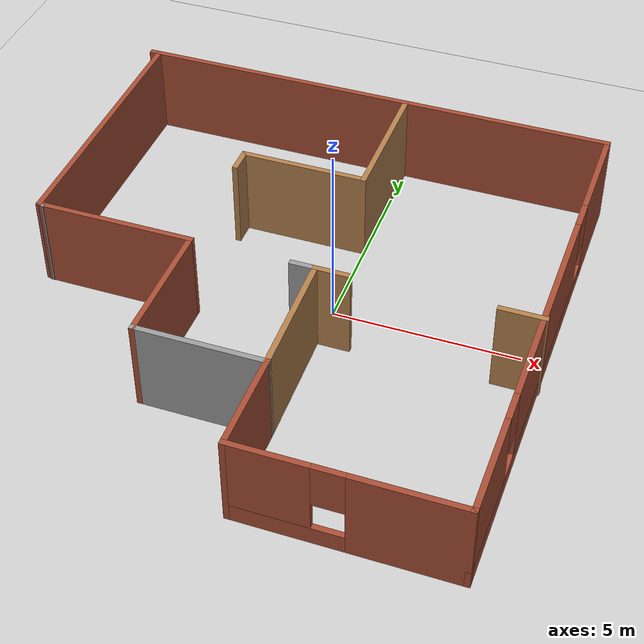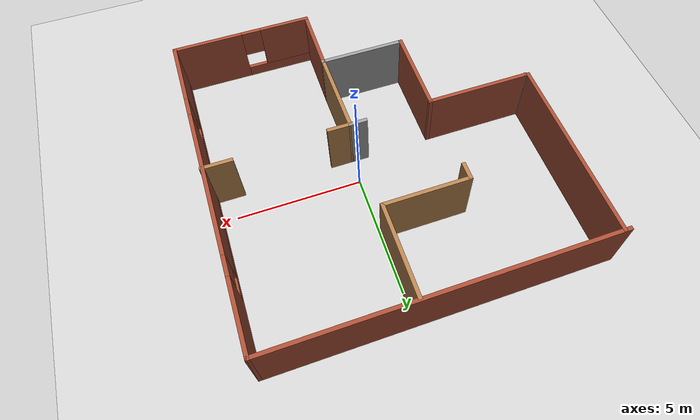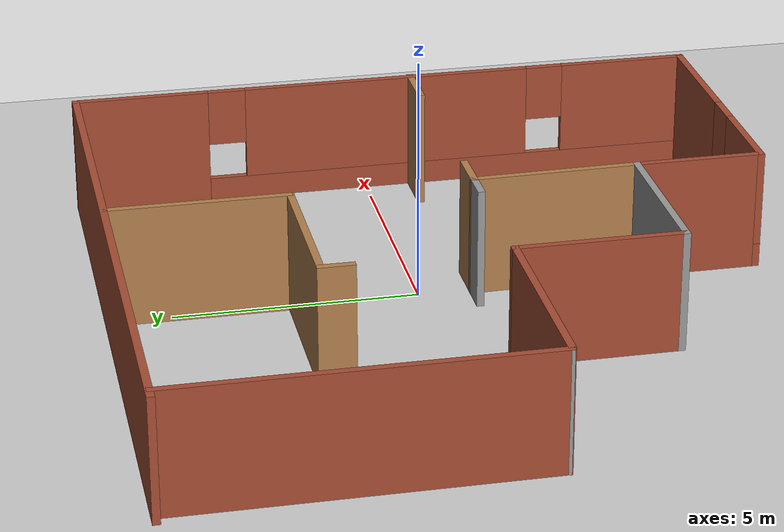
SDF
<sdf version="1.6">
 <world name="default">
  <model name="ground_plane">
   <static>1</static>
   <link name="link">
    <collision name="collision">
     <geometry><plane><normal>0 0 1</normal><size>100 100</size></plane></geometry>
     <surface>
      <contact><collide_bitmask>65535</collide_bitmask></contact>
      <friction><ode><mu>100</mu><mu2>50</mu2></ode></friction>
     </surface>
    </collision>
    <visual name="visual">
     <cast_shadows>0</cast_shadows>
     <geometry><plane><normal>0 0 1</normal><size>100 100</size></plane></geometry>
     <material>
      <script><uri>file://media/materials/scripts/gazebo.material</uri><name>Gazebo/Grey</name></script>
     </material>
    </visual>
   </link>
  </model>
  <model name="building_0">
   <pose>-1.0593 -0.419655 0 0 -0 0</pose>
   <link name="Wall_0">
    <collision name="Wall_0_Collision">
     <geometry><box><size>13.5 0.15 2.5</size></box></geometry>
     <pose>0 0 1.25 0 -0 0</pose>
    </collision>
    <visual name="Wall_0_Visual">
     <pose>0 0 1.25 0 -0 0</pose>
     <geometry><box><size>13.5 0.15 2.5</size></box></geometry>
     <material>
      <script><uri>file://media/materials/scripts/gazebo.material</uri><name>Gazebo/Bricks</name></script>
      <ambient>1 1 1 1</ambient>
     </material>
     <meta><layer>0</layer></meta>
    </visual>
    <pose>-0.019646 6.675 0 0 -0 0</pose>
   </link>
   <link name="Wall_1">
    <pose>6.65535 0 0 0 -0 -1.5708</pose>
    <visual name="Wall_1_Visual_0">
     <pose>-5.30319 0 1.25 0 -0 0</pose>
     <geometry><box><size>2.89362 0.15 2.5</size></box></geometry>
     <material>
      <script><uri>file://media/materials/scripts/gazebo.material</uri><name>Gazebo/Bricks</name></script>
      <ambient>1 1 1 1</ambient>
     </material>
     <meta><layer>0</layer></meta>
    </visual>
    <collision name="Wall_1_Collision_0">
     <geometry><box><size>2.89362 0.15 2.5</size></box></geometry>
     <pose>-5.30319 0 1.25 0 -0 0</pose>
    </collision>
    <visual name="Wall_1_Visual_1">
     <pose>1.44681 0 0.25 0 -0 0</pose>
     <geometry><box><size>10.6064 0.15 0.5</size></box></geometry>
     <material>
      <script><uri>file://media/materials/scripts/gazebo.material</uri><name>Gazebo/Bricks</name></script>
      <ambient>1 1 1 1</ambient>
     </material>
     <meta><layer>0</layer></meta>
    </visual>
    <collision name="Wall_1_Collision_1">
     <geometry><box><size>10.6064 0.15 0.5</size></box></geometry>
     <pose>1.44681 0 0.25 0 -0 0</pose>
    </collision>
    <visual name="Wall_1_Visual_2">
     <pose>0.05485 0 1.5 0 -0 0</pose>
     <geometry><box><size>6.22245 0.15 2</size></box></geometry>
     <material>
      <script><uri>file://media/materials/scripts/gazebo.material</uri><name>Gazebo/Bricks</name></script>
      <ambient>1 1 1 1</ambient>
     </material>
     <meta><layer>0</layer></meta>
    </visual>
    <collision name="Wall_1_Collision_2">
     <geometry><box><size>6.22245 0.15 2</size></box></geometry>
     <pose>0.05485 0 1.5 0 -0 0</pose>
    </collision>
    <visual name="Wall_1_Visual_3">
     <pose>5.35804 0 1.5 0 -0 0</pose>
     <geometry><box><size>2.78392 0.15 2</size></box></geometry>
     <material>
      <script><uri>file://media/materials/scripts/gazebo.material</uri><name>Gazebo/Bricks</name></script>
      <ambient>1 1 1 1</ambient>
     </material>
     <meta><layer>0</layer></meta>
    </visual>
    <collision name="Wall_1_Collision_3">
     <geometry><box><size>2.78392 0.15 2</size></box></geometry>
     <pose>5.35804 0 1.5 0 -0 0</pose>
    </collision>
    <visual name="Wall_1_Visual_4">
     <pose>-3.45638 0 1.9 0 -0 0</pose>
     <geometry><box><size>0.8 0.15 1.2</size></box></geometry>
     <material>
      <script><uri>file://media/materials/scripts/gazebo.material</uri><name>Gazebo/Bricks</name></script>
      <ambient>1 1 1 1</ambient>
     </material>
     <meta><layer>0</layer></meta>
    </visual>
    <collision name="Wall_1_Collision_4">
     <geometry><box><size>0.8 0.15 1.2</size></box></geometry>
     <pose>-3.45638 0 1.9 0 -0 0</pose>
    </collision>
    <visual name="Wall_1_Visual_5">
     <pose>3.56608 0 1.9 0 -0 0</pose>
     <geometry><box><size>0.8 0.15 1.2</size></box></geometry>
     <material>
      <script><uri>file://media/materials/scripts/gazebo.material</uri><name>Gazebo/Bricks</name></script>
      <ambient>1 1 1 1</ambient>
     </material>
     <meta><layer>0</layer></meta>
    </visual>
    <collision name="Wall_1_Collision_5">
     <geometry><box><size>0.8 0.15 1.2</size></box></geometry>
     <pose>3.56608 0 1.9 0 -0 0</pose>
    </collision>
   </link>
   <link name="Wall_10">
    <collision name="Wall_10_Collision">
     <geometry><box><size>3.75 0.15 2.5</size></box></geometry>
     <pose>0 0 1.25 0 -0 0</pose>
    </collision>
    <visual name="Wall_10_Visual">
     <pose>0 0 1.25 0 -0 0</pose>
     <geometry><box><size>3.75 0.15 2.5</size></box></geometry>
     <material>
      <script><uri>file://media/materials/scripts/gazebo.material</uri><name>Gazebo/Wood</name></script>
      <ambient>0.435294 0.796078 0.67451 1</ambient>
     </material>
     <meta><layer>0</layer></meta>
    </visual>
    <pose>0.992812 4.80417 0 0 -0 1.5708</pose>
   </link>
   <link name="Wall_12">
    <collision name="Wall_12_Collision">
     <geometry><box><size>1 0.15 2.5</size></box></geometry>
     <pose>0 0 1.25 0 -0 0</pose>
    </collision>
    <visual name="Wall_12_Visual">
     <pose>0 0 1.25 0 -0 0</pose>
     <geometry><box><size>1 0.15 2.5</size></box></geometry>
     <material>
      <script><uri>file://media/materials/scripts/gazebo.material</uri><name>Gazebo/Wood</name></script>
      <ambient>1 1 1 1</ambient>
     </material>
     <meta><layer>0</layer></meta>
    </visual>
    <pose>1.41781 -0.693255 0 0 -0 0</pose>
   </link>
   <link name="Wall_14">
    <collision name="Wall_14_Collision">
     <geometry><box><size>1.25 0.15 2.5</size></box></geometry>
     <pose>0 0 1.25 0 -0 0</pose>
    </collision>
    <visual name="Wall_14_Visual">
     <pose>0 0 1.25 0 -0 0</pose>
     <geometry><box><size>1.25 0.15 2.5</size></box></geometry>
     <material>
      <script><uri>file://media/materials/scripts/gazebo.material</uri><name>Gazebo/Wood</name></script>
      <ambient>1 1 1 1</ambient>
     </material>
     <meta><layer>0</layer></meta>
    </visual>
    <pose>6.14465 -0.586854 0 0 -0 0</pose>
   </link>
   <link name="Wall_16">
    <collision name="Wall_16_Collision">
     <geometry><box><size>0.75 0.15 2.5</size></box></geometry>
     <pose>0 0 1.25 0 -0 0</pose>
    </collision>
    <visual name="Wall_16_Visual">
     <pose>0 0 1.25 0 -0 0</pose>
     <geometry><box><size>0.75 0.15 2.5</size></box></geometry>
     <material>
      <script><uri>file://media/materials/scripts/gazebo.material</uri><name>Gazebo/Grey</name></script>
      <ambient>1 1 1 1</ambient>
     </material>
     <meta><layer>0</layer></meta>
    </visual>
    <pose>0.692812 -0.693255 0 0 -0 3.14159</pose>
   </link>
   <link name="Wall_18">
    <collision name="Wall_18_Collision">
     <geometry><box><size>3.5 0.15 2.5</size></box></geometry>
     <pose>0 0 1.25 0 -0 0</pose>
    </collision>
    <visual name="Wall_18_Visual">
     <pose>0 0 1.25 0 -0 0</pose>
     <geometry><box><size>3.5 0.15 2.5</size></box></geometry>
     <material>
      <script><uri>file://media/materials/scripts/gazebo.material</uri><name>Gazebo/Wood</name></script>
      <ambient>0.435294 0.796078 0.67451 1</ambient>
     </material>
     <meta><layer>0</layer></meta>
    </visual>
    <pose>-0.682188 3.00417 0 0 -0 3.14159</pose>
   </link>
   <link name="Wall_19">
    <collision name="Wall_19_Collision">
     <geometry><box><size>0.75 0.15 2.5</size></box></geometry>
     <pose>0 0 1.25 0 -0 0</pose>
    </collision>
    <visual name="Wall_19_Visual">
     <pose>0 0 1.25 0 -0 0</pose>
     <geometry><box><size>0.75 0.15 2.5</size></box></geometry>
     <material>
      <script><uri>file://media/materials/scripts/gazebo.material</uri><name>Gazebo/Wood</name></script>
      <ambient>1 1 1 1</ambient>
     </material>
     <meta><layer>0</layer></meta>
    </visual>
    <pose>-2.35719 2.70417 0 0 -0 -1.5708</pose>
   </link>
   <link name="Wall_2">
    <pose>3.85535 -6.675 0 0 -0 3.14159</pose>
    <visual name="Wall_2_Visual_0">
     <pose>-1.44314 0 1.25 0 -0 0</pose>
     <geometry><box><size>2.86372 0.15 2.5</size></box></geometry>
     <material>
      <script><uri>file://media/materials/scripts/gazebo.material</uri><name>Gazebo/Bricks</name></script>
      <ambient>1 1 1 1</ambient>
     </material>
     <meta><layer>0</layer></meta>
    </visual>
    <collision name="Wall_2_Collision_0">
     <geometry><box><size>2.86372 0.15 2.5</size></box></geometry>
     <pose>-1.44314 0 1.25 0 -0 0</pose>
    </collision>
    <visual name="Wall_2_Visual_1">
     <pose>1.43186 0 0.25 0 -0 0</pose>
     <geometry><box><size>2.88628 0.15 0.5</size></box></geometry>
     <material>
      <script><uri>file://media/materials/scripts/gazebo.material</uri><name>Gazebo/Bricks</name></script>
      <ambient>1 1 1 1</ambient>
     </material>
     <meta><layer>0</layer></meta>
    </visual>
    <collision name="Wall_2_Collision_1">
     <geometry><box><size>2.88628 0.15 0.5</size></box></geometry>
     <pose>1.43186 0 0.25 0 -0 0</pose>
    </collision>
    <visual name="Wall_2_Visual_2">
     <pose>1.83186 0 1.5 0 -0 0</pose>
     <geometry><box><size>2.08628 0.15 2</size></box></geometry>
     <material>
      <script><uri>file://media/materials/scripts/gazebo.material</uri><name>Gazebo/Bricks</name></script>
      <ambient>1 1 1 1</ambient>
     </material>
     <meta><layer>0</layer></meta>
    </visual>
    <collision name="Wall_2_Collision_2">
     <geometry><box><size>2.08628 0.15 2</size></box></geometry>
     <pose>1.83186 0 1.5 0 -0 0</pose>
    </collision>
    <visual name="Wall_2_Visual_3">
     <pose>0.388724 0 1.9 0 -0 0</pose>
     <geometry><box><size>0.8 0.15 1.2</size></box></geometry>
     <material>
      <script><uri>file://media/materials/scripts/gazebo.material</uri><name>Gazebo/Bricks</name></script>
      <ambient>1 1 1 1</ambient>
     </material>
     <meta><layer>0</layer></meta>
    </visual>
    <collision name="Wall_2_Collision_3">
     <geometry><box><size>0.8 0.15 1.2</size></box></geometry>
     <pose>0.388724 0 1.9 0 -0 0</pose>
    </collision>
   </link>
   <link name="Wall_21">
    <collision name="Wall_21_Collision">
     <geometry><box><size>3.53232 0.15 2.5</size></box></geometry>
     <pose>0 0 1.25 0 -0 0</pose>
    </collision>
    <visual name="Wall_21_Visual">
     <pose>0 0 1.25 0 -0 0</pose>
     <geometry><box><size>3.53232 0.15 2.5</size></box></geometry>
     <material>
      <script><uri>file://media/materials/scripts/gazebo.material</uri><name>Gazebo/Wood</name></script>
      <ambient>1 1 1 1</ambient>
     </material>
     <meta><layer>0</layer></meta>
    </visual>
    <pose>1.02408 -2.38413 0 0 -0 -1.5523</pose>
   </link>
   <link name="Wall_3">
    <collision name="Wall_3_Collision">
     <geometry><box><size>2.75 0.15 2.5</size></box></geometry>
     <pose>0 0 1.25 0 -0 0</pose>
    </collision>
    <visual name="Wall_3_Visual">
     <pose>0 0 1.25 0 -0 0</pose>
     <geometry><box><size>2.75 0.15 2.5</size></box></geometry>
     <material>
      <script><uri>file://media/materials/scripts/gazebo.material</uri><name>Gazebo/Bricks</name></script>
      <ambient>1 1 1 1</ambient>
     </material>
     <meta><layer>0</layer></meta>
    </visual>
    <pose>1.05535 -5.375 0 0 -0 1.5708</pose>
   </link>
   <link name="Wall_4">
    <collision name="Wall_4_Collision">
     <geometry><box><size>3.5 0.15 2.5</size></box></geometry>
     <pose>0 0 1.25 0 -0 0</pose>
    </collision>
    <visual name="Wall_4_Visual">
     <pose>0 0 1.25 0 -0 0</pose>
     <geometry><box><size>3.5 0.15 2.5</size></box></geometry>
     <material>
      <script><uri>file://media/materials/scripts/gazebo.material</uri><name>Gazebo/Grey</name></script>
      <ambient>1 1 1 1</ambient>
     </material>
     <meta><layer>0</layer></meta>
    </visual>
    <pose>-0.619646 -4.075 0 0 -0 3.14159</pose>
   </link>
   <link name="Wall_5">
    <collision name="Wall_5_Collision">
     <geometry><box><size>3.5 0.15 2.5</size></box></geometry>
     <pose>0 0 1.25 0 -0 0</pose>
    </collision>
    <visual name="Wall_5_Visual">
     <pose>0 0 1.25 0 -0 0</pose>
     <geometry><box><size>3.5 0.15 2.5</size></box></geometry>
     <material>
      <script><uri>file://media/materials/scripts/gazebo.material</uri><name>Gazebo/Bricks</name></script>
      <ambient>1 1 1 1</ambient>
     </material>
     <meta><layer>0</layer></meta>
    </visual>
    <pose>-2.29465 -2.4 0 0 -0 1.5708</pose>
   </link>
   <link name="Wall_6">
    <collision name="Wall_6_Collision">
     <geometry><box><size>4.25 0.15 2.5</size></box></geometry>
     <pose>0 0 1.25 0 -0 0</pose>
    </collision>
    <visual name="Wall_6_Visual">
     <pose>0 0 1.25 0 -0 0</pose>
     <geometry><box><size>4.25 0.15 2.5</size></box></geometry>
     <material>
      <script><uri>file://media/materials/scripts/gazebo.material</uri><name>Gazebo/Bricks</name></script>
      <ambient>1 1 1 1</ambient>
     </material>
     <meta><layer>0</layer></meta>
    </visual>
    <pose>-4.34465 -0.725 0 0 -0 3.14159</pose>
   </link>
   <link name="Wall_7">
    <collision name="Wall_7_Collision">
     <geometry><box><size>0.25 0.15 2.5</size></box></geometry>
     <pose>0 0 1.25 0 -0 0</pose>
    </collision>
    <visual name="Wall_7_Visual">
     <pose>0 0 1.25 0 -0 0</pose>
     <geometry><box><size>0.25 0.15 2.5</size></box></geometry>
     <material>
      <script><uri>file://media/materials/scripts/gazebo.material</uri><name>Gazebo/Grey</name></script>
      <ambient>1 1 1 1</ambient>
     </material>
     <meta><layer>0</layer></meta>
    </visual>
    <pose>-6.44294 -0.712059 0 0 -0 2.87979</pose>
   </link>
   <link name="Wall_8">
    <collision name="Wall_8_Collision">
     <geometry><box><size>7.5 0.15 2.5</size></box></geometry>
     <pose>0 0 1.25 0 -0 0</pose>
    </collision>
    <visual name="Wall_8_Visual">
     <pose>0 0 1.25 0 -0 0</pose>
     <geometry><box><size>7.5 0.15 2.5</size></box></geometry>
     <material>
      <script><uri>file://media/materials/scripts/gazebo.material</uri><name>Gazebo/Bricks</name></script>
      <ambient>1 1 1 1</ambient>
     </material>
     <meta><layer>0</layer></meta>
    </visual>
    <pose>-6.49124 2.97588 0 0 -0 1.5708</pose>
   </link>
   <static>1</static>
  </model>
 </world>
</sdf>
